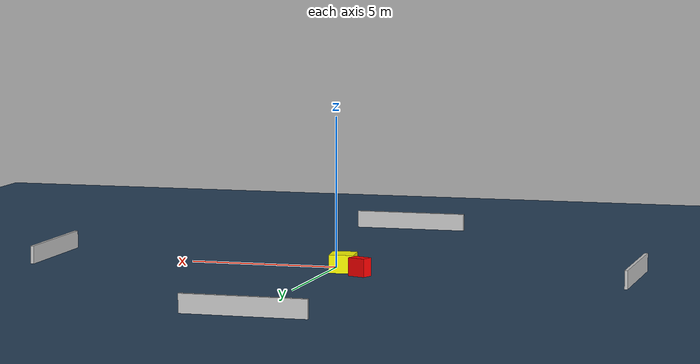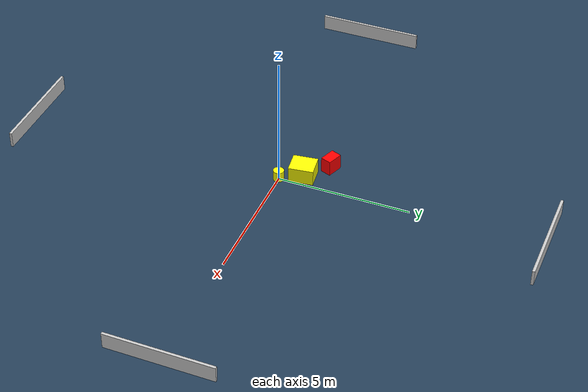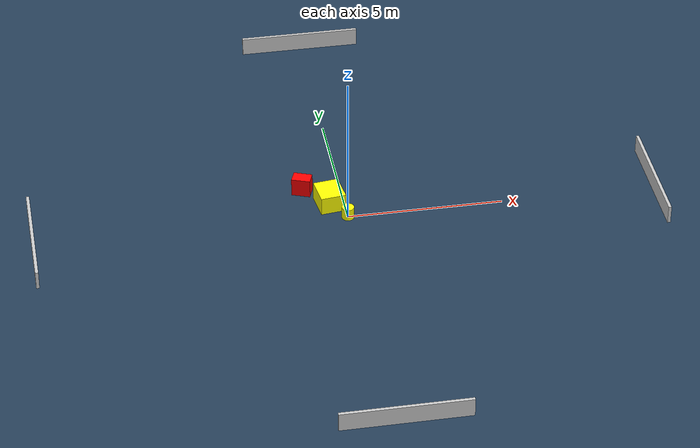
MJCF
<?xml version="1.0" ?>
<mujoco model="generated_environment">
  <option timestep="0.01" integrator="RK4" cone="elliptic"/>
  <default>
    <geom density="1"/>
  </default>
  <asset>
    <texture builtin="gradient" height="3072" name="skybox" rgb1="0.3 0.5 0.7" rgb2="0 0 0" type="skybox" width="512"/>
    <texture builtin="checker" height="300" name="groundplane" rgb1="0.2 0.3 0.4" rgb2="0.1 0.2 0.3" type="2d" width="300"/>
    <material name="groundplane" reflectance="0.2" texrepeat="5 5" texture="groundplane"/>
  </asset>
  <worldbody>
    <light dir="0 0 -1" directional="true" pos="0 0 1.5"/>
    <geom condim="3" friction="0.5 0.005 0.001" material="groundplane" name="floor" pos="0 0 0" size="0 0 0.05" type="plane"/>
    <body name="walls">
      <geom name="wall_1" condim="4" pos="-10.0 0.0 0.3" rgba="0.800000011920929 0.800000011920929 0.800000011920929 1.0" size="0.05 2.0 0.3" type="box"/>
      <geom name="wall_2" condim="4" pos="10.0 0.0 0.3" rgba="0.800000011920929 0.800000011920929 0.800000011920929 1.0" size="0.05 2.0 0.3" type="box"/>
      <geom name="wall_3" condim="4" pos="0.0 -10.0 0.3" rgba="0.800000011920929 0.800000011920929 0.800000011920929 1.0" size="2.0 0.05 0.3" type="box"/>
      <geom name="wall_4" condim="4" pos="0.0 10.0 0.3" rgba="0.800000011920929 0.800000011920929 0.800000011920929 1.0" size="2.0 0.05 0.3" type="box"/>
    </body>
    <body name="robot">
      <joint name="joint_x" type="slide" pos="0 0 0" axis="1 0 0"/>
      <joint name="joint_y" type="slide" pos="0 0 0" axis="0 1 0"/>
      <geom name="robot" type="cylinder" pos="0.0 0.0 0.2" size="0.2 0.2 0.0" mass="5.0" friction="1.0 0.005 0.0001" condim="4" rgba="1.0 1.0 0.0 1.0"/>
    </body>
    <body name="obstacle_1_movable">
      <geom name="obstacle_1_movable" condim="4" pos="-0.4634988866827316 0.7771474195921498 0.3" euler="0 0 97.31236878650272" friction="0.0 0.005 0.001" rgba="1.0 1.0 0.0 1.0" size="0.46494169723963163 0.40913020230674474 0.3" type="box" mass="0.1"/>
      <joint type="free"/>
    </body>
    <body name="obstacle_2_static">
      <geom name="obstacle_2_static" condim="4" pos="-1.2349163197898694 1.569595166241698 0.3" euler="0 0 339.3604929247121" friction="0.0 0.005 0.001" rgba="1.0 0.0 0.0 1.0" size="0.3024556712867361 0.20549472742606975 0.3" type="box"/>
    </body>
  </worldbody>
  <actuator>
    <motor name="actuator_x" joint="joint_x" gear="1" ctrlrange="-1 1"/>
    <motor name="actuator_y" joint="joint_y" gear="1" ctrlrange="-1 1"/>
  </actuator>
</mujoco>
